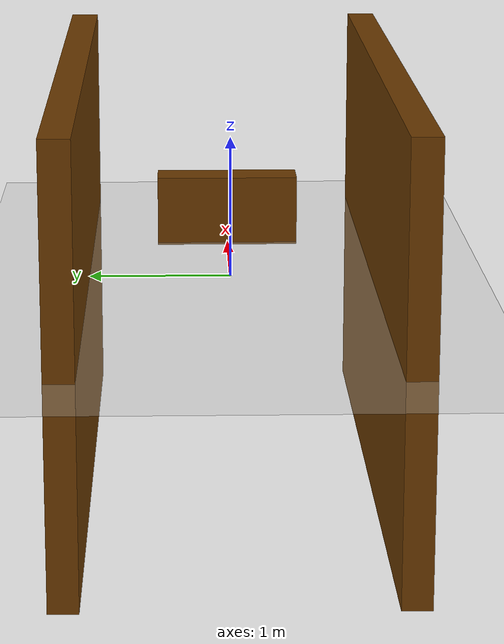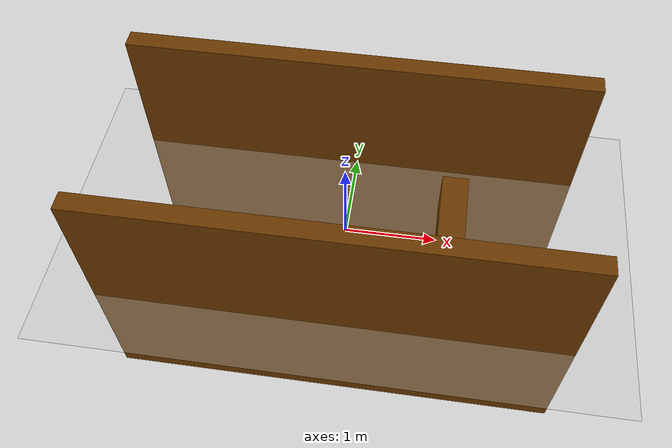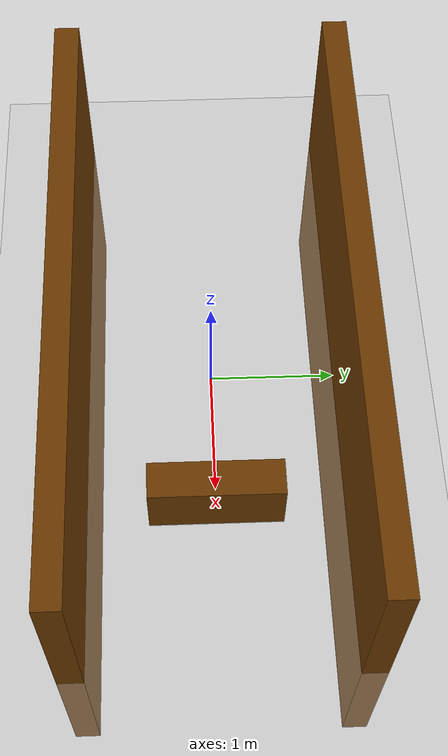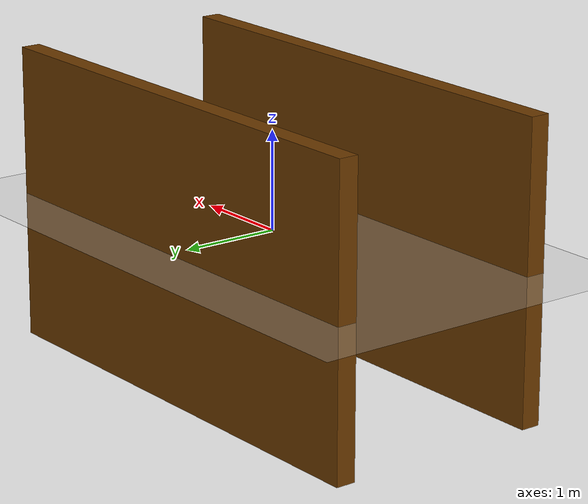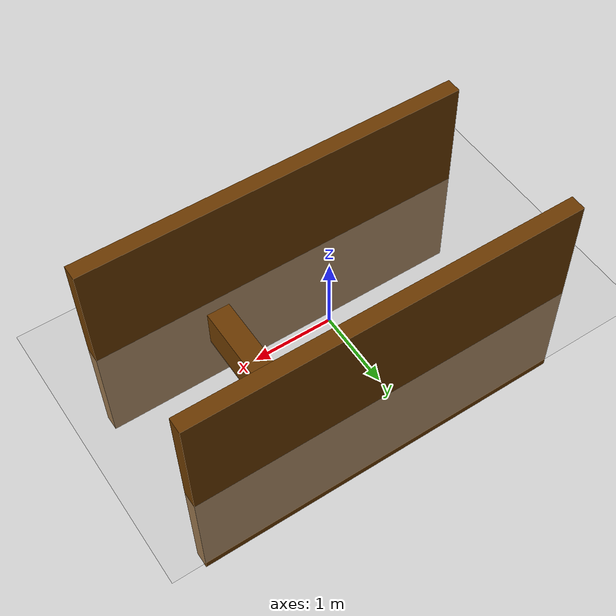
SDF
<?xml version="1.0" ?>
<sdf version="1.5">
    <world name="default">

        <physics type="ode">
            <max_step_size>0.0005</max_step_size>
            <real_time_factor>1</real_time_factor>
            <real_time_update_rate>2000</real_time_update_rate>
            <gravity>0 0 -9.81</gravity>
            <ode>
                <solver>
                    <type>quick</type>
                    <iters>50</iters>
                    <sor>1.3</sor>
                </solver>
                <constraints>
                    <cfm>0.0</cfm>
                    <erp>0.2</erp>
                    <contact_max_correcting_vel>10.0</contact_max_correcting_vel>
                    <contact_surface_layer>0.001</contact_surface_layer>
                </constraints>
            </ode>
        </physics>

        <scene>
            <sky>
                <clouds>
                    <speed>12</speed>
                </clouds>
            </sky>
        </scene>
        <!-- A global light source -->
        <include>
            <uri>model://sun</uri>
        </include>
        <!-- A ground plane -->
        <include>
            <uri>model://ground_plane</uri>
        </include>
        <!-- environment blocks, obstacles or stairs -->
        <model name="static_environment">
            <static>true</static>
            <link name="box">
                <pose>1.1425 0 0.2335 0 0 0</pose>
                <collision name="static_box_collision">
                    <geometry>
                        <box>
                            <size>0.285 1.04 0.51</size>
                        </box>
                    </geometry>
                </collision>
                <visual name="static_box_visual">
                    <geometry>
                        <box>
                            <size>0.285 1.04 0.51</size>
                        </box>
                    </geometry>
                    <material>
                        <ambient>0.2 0.2 0.2 1.0</ambient>
                        <diffuse>.421 0.225 0.0 1.0</diffuse>
                    </material>
                </visual>
            </link>
            <link name="box_2">
                <pose>0.5 0 0.005 0 0 0</pose>
                <collision name="static_box_collision">
                    <geometry>
                        <box>
                            <size>1 0.02 0.01</size>
                        </box>
                    </geometry>
                </collision>
                <visual name="static_box_visual">
                    <geometry>
                        <box>
                            <size>1 0.02 0.01</size>
                        </box>
                    </geometry>
                    <material>
                        <ambient>0.2 0.2 0.2 1.0</ambient>
                        <diffuse>.421 0.225 0.0 1.0</diffuse>
                    </material>
                </visual>
            </link>
            <link name="wall_1">
                <pose>0 -1.1 0 0 0 0</pose>
                <collision name="static_box_collision">
                    <geometry>
                        <box>
                            <size>5 0.2 3</size>
                        </box>
                    </geometry>
                </collision>
                <visual name="static_box_visual">
                    <geometry>
                        <box>
                            <size>5 0.2 3</size>
                        </box>
                    </geometry>
                    <material>
                        <ambient>0.2 0.2 0.2 1.0</ambient>
                        <diffuse>.421 0.225 0.0 1.0</diffuse>
                    </material>
                </visual>
            </link>
            <link name="wall_2">
                <pose>0.0 1.1 0.0 0 0 0</pose>
                <collision name="static_box_collision">
                    <geometry>
                        <box>
                            <size>5 0.2 3</size>
                        </box>
                    </geometry>
                </collision>
                <visual name="static_box_visual">
                    <geometry>
                        <box>
                            <size>5 0.2 3</size>
                        </box>
                    </geometry>
                    <material>
                        <ambient>0.2 0.2 0.2 1.0</ambient>
                        <diffuse>.421 0.225 0.0 1.0</diffuse>
                    </material>
                </visual>
            </link>
        </model>

    </world>
</sdf>
